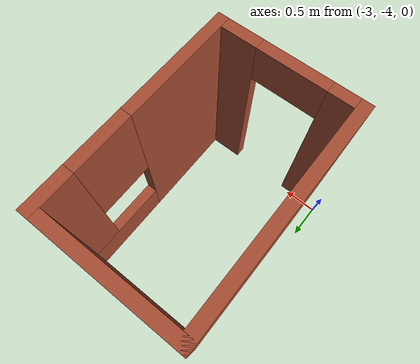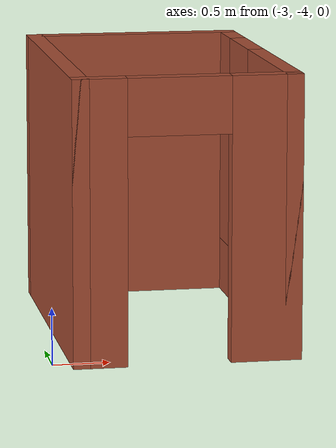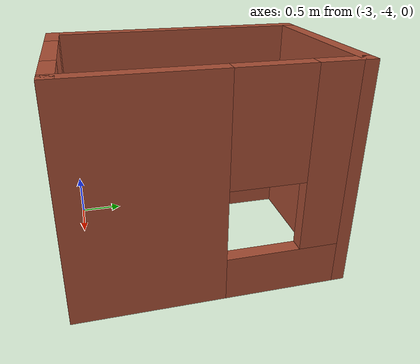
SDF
<?xml version='1.0'?>
<sdf version='1.7'>
  <model name='test_world'>
    <pose>-1.4225 -2.0925 0 0 -0 0</pose>
    <link name='Wall_0'>
      <collision name='Wall_0_Collision'>
        <geometry>
          <box>
            <size>3 0.15 2.5</size>
          </box>
        </geometry>
        <pose>0 0 1.25 0 -0 0</pose>
      </collision>
      <visual name='Wall_0_Visual'>
        <pose>0 0 1.25 0 -0 0</pose>
        <geometry>
          <box>
            <size>3 0.15 2.5</size>
          </box>
        </geometry>
        <material>
          <script>
            <uri>file://media/materials/scripts/gazebo.material</uri>
            <name>Gazebo/Bricks</name>
          </script>
          <ambient>1 1 1 1</ambient>
        </material>
        <meta>
          <layer>0</layer>
        </meta>
      </visual>
      <pose>-1.3475 -0.5925 0 0 -0 -1.5708</pose>
    </link>
    <link name='Wall_1'>
      <pose>-0.4225 -2.0175 0 0 -0 0</pose>
      <visual name='Wall_1_Visual_0'>
        <pose>-0.7625 0 1.25 0 -0 0</pose>
        <geometry>
          <box>
            <size>0.475 0.15 2.5</size>
          </box>
        </geometry>
        <material>
          <script>
            <uri>file://media/materials/scripts/gazebo.material</uri>
            <name>Gazebo/Bricks</name>
          </script>
          <ambient>1 1 1 1</ambient>
        </material>
        <meta>
          <layer>0</layer>
        </meta>
      </visual>
      <collision name='Wall_1_Collision_0'>
        <geometry>
          <box>
            <size>0.475 0.15 2.5</size>
          </box>
        </geometry>
        <pose>-0.7625 0 1.25 0 -0 0</pose>
      </collision>
      <visual name='Wall_1_Visual_1'>
        <pose>0.6875 0 1.25 0 -0 0</pose>
        <geometry>
          <box>
            <size>0.625 0.15 2.5</size>
          </box>
        </geometry>
        <material>
          <script>
            <uri>file://media/materials/scripts/gazebo.material</uri>
            <name>Gazebo/Bricks</name>
          </script>
          <ambient>1 1 1 1</ambient>
        </material>
        <meta>
          <layer>0</layer>
        </meta>
      </visual>
      <collision name='Wall_1_Collision_1'>
        <geometry>
          <box>
            <size>0.625 0.15 2.5</size>
          </box>
        </geometry>
        <pose>0.6875 0 1.25 0 -0 0</pose>
      </collision>
      <visual name='Wall_1_Visual_2'>
        <pose>-0.075 0 2.25 0 -0 0</pose>
        <geometry>
          <box>
            <size>0.9 0.15 0.5</size>
          </box>
        </geometry>
        <material>
          <script>
            <uri>file://media/materials/scripts/gazebo.material</uri>
            <name>Gazebo/Bricks</name>
          </script>
          <ambient>1 1 1 1</ambient>
        </material>
        <meta>
          <layer>0</layer>
        </meta>
      </visual>
      <collision name='Wall_1_Collision_2'>
        <geometry>
          <box>
            <size>0.9 0.15 0.5</size>
          </box>
        </geometry>
        <pose>-0.075 0 2.25 0 -0 0</pose>
      </collision>
    </link>
    <link name='Wall_2'>
      <pose>0.5025 -0.5925 0 0 -0 1.5708</pose>
      <visual name='Wall_2_Visual_0'>
        <pose>-0.6925 0 1.25 0 -0 0</pose>
        <geometry>
          <box>
            <size>1.615 0.15 2.5</size>
          </box>
        </geometry>
        <material>
          <script>
            <uri>file://media/materials/scripts/gazebo.material</uri>
            <name>Gazebo/Bricks</name>
          </script>
          <ambient>1 1 1 1</ambient>
        </material>
        <meta>
          <layer>0</layer>
        </meta>
      </visual>
      <collision name='Wall_2_Collision_0'>
        <geometry>
          <box>
            <size>1.615 0.15 2.5</size>
          </box>
        </geometry>
        <pose>-0.6925 0 1.25 0 -0 0</pose>
      </collision>
      <visual name='Wall_2_Visual_1'>
        <pose>0.8075 0 0.25 0 -0 0</pose>
        <geometry>
          <box>
            <size>1.385 0.15 0.5</size>
          </box>
        </geometry>
        <material>
          <script>
            <uri>file://media/materials/scripts/gazebo.material</uri>
            <name>Gazebo/Bricks</name>
          </script>
          <ambient>1 1 1 1</ambient>
        </material>
        <meta>
          <layer>0</layer>
        </meta>
      </visual>
      <collision name='Wall_2_Collision_1'>
        <geometry>
          <box>
            <size>1.385 0.15 0.5</size>
          </box>
        </geometry>
        <pose>0.8075 0 0.25 0 -0 0</pose>
      </collision>
      <visual name='Wall_2_Visual_2'>
        <pose>1.2075 0 1.5 0 -0 0</pose>
        <geometry>
          <box>
            <size>0.585 0.15 2</size>
          </box>
        </geometry>
        <material>
          <script>
            <uri>file://media/materials/scripts/gazebo.material</uri>
            <name>Gazebo/Bricks</name>
          </script>
          <ambient>1 1 1 1</ambient>
        </material>
        <meta>
          <layer>0</layer>
        </meta>
      </visual>
      <collision name='Wall_2_Collision_2'>
        <geometry>
          <box>
            <size>0.585 0.15 2</size>
          </box>
        </geometry>
        <pose>1.2075 0 1.5 0 -0 0</pose>
      </collision>
      <visual name='Wall_2_Visual_3'>
        <pose>0.515 0 1.9 0 -0 0</pose>
        <geometry>
          <box>
            <size>0.8 0.15 1.2</size>
          </box>
        </geometry>
        <material>
          <script>
            <uri>file://media/materials/scripts/gazebo.material</uri>
            <name>Gazebo/Bricks</name>
          </script>
          <ambient>1 1 1 1</ambient>
        </material>
        <meta>
          <layer>0</layer>
        </meta>
      </visual>
      <collision name='Wall_2_Collision_3'>
        <geometry>
          <box>
            <size>0.8 0.15 1.2</size>
          </box>
        </geometry>
        <pose>0.515 0 1.9 0 -0 0</pose>
      </collision>
    </link>
    <link name='Wall_3'>
      <collision name='Wall_3_Collision'>
        <geometry>
          <box>
            <size>2 0.15 2.5</size>
          </box>
        </geometry>
        <pose>0 0 1.25 0 -0 0</pose>
      </collision>
      <visual name='Wall_3_Visual'>
        <pose>0 0 1.25 0 -0 0</pose>
        <geometry>
          <box>
            <size>2 0.15 2.5</size>
          </box>
        </geometry>
        <material>
          <script>
            <uri>file://media/materials/scripts/gazebo.material</uri>
            <name>Gazebo/Bricks</name>
          </script>
          <ambient>1 1 1 1</ambient>
        </material>
        <meta>
          <layer>0</layer>
        </meta>
      </visual>
      <pose>-0.4225 0.8325 0 0 -0 3.14159</pose>
    </link>
    <static>1</static>
  </model>
</sdf>
